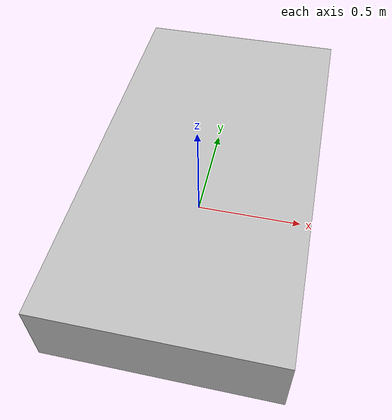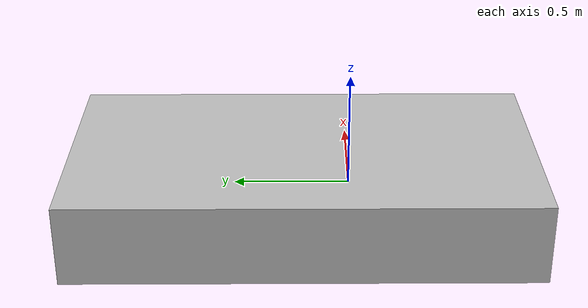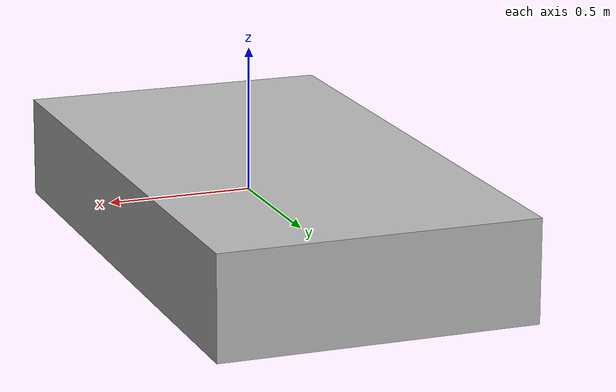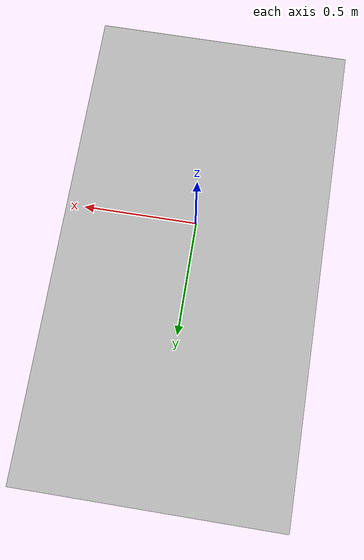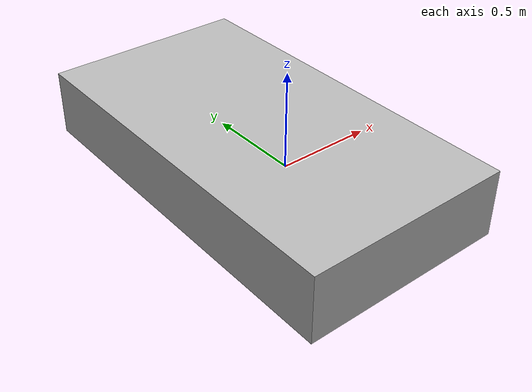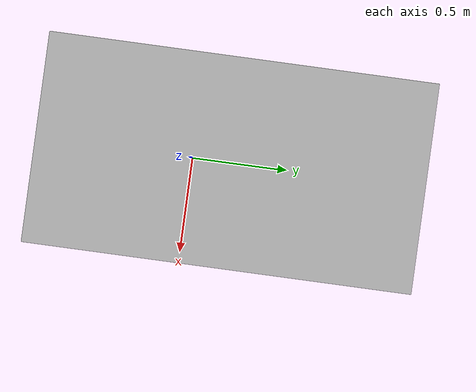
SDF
<?xml version="1.0" ?>
<sdf version="1.10">
  <world name="bcod_parity_constant-thrust">

    <spherical_coordinates>
      <surface_model>EARTH_WGS84</surface_model>
      <world_frame_orientation>ENU</world_frame_orientation>
      <latitude_deg>-33.7227687689</latitude_deg>
      <longitude_deg>150.6739911017</longitude_deg>
      <elevation>0</elevation>
      <heading_deg>0</heading_deg>
    </spherical_coordinates>
    <physics name="parity_physics" type="dart">
      <max_step_size>0.05</max_step_size>
      <real_time_factor>1</real_time_factor>
    </physics>
    <gravity>0 0 -9.81</gravity>
    <plugin filename="gz-sim-physics-system" name="gz::sim::systems::Physics"/>
    <plugin filename="gz-sim-user-commands-system" name="gz::sim::systems::UserCommands"/>

    <plugin filename="gz-sim-buoyancy-system" name="gz::sim::systems::Buoyancy">
      <graded_buoyancy>
        <default_density>1025</default_density>
        <density_change>
          <above_depth>0</above_depth>
          <density>0</density>
        </density_change>
      </graded_buoyancy>
    </plugin>
    <include>
      <uri>model://otter</uri>
      <pose>0 0 0 0 0 1.5707963268</pose>
    </include>
    <plugin filename="gz-sim-scene-broadcaster-system" name="gz::sim::systems::SceneBroadcaster"/>
    <plugin filename="gz-sim-sensors-system" name="gz::sim::systems::Sensors"/>
    <plugin filename="gz-sim-imu-system" name="gz::sim::systems::Imu"/>
    <plugin filename="gz-sim-navsat-system" name="gz::sim::systems::NavSat"/>
    <plugin filename="gz-sim-contact-system" name="gz::sim::systems::Contact"/>
    <plugin filename="gz-sim-apply-link-wrench-system" name="gz::sim::systems::ApplyLinkWrench"/>
    <!-- BCOD parity metadata: current ENU 0 0 0 -->
  </world>
</sdf>

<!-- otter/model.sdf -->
<sdf version="1.10">
  <model name="otter">
    <pose>0 0 0 0 0 0</pose>
    <link name="base_link">
      <inertial>
        <pose>0.2 0 -0.2 0 0 0</pose>
        <mass>55</mass>
        <inertia>
          <ixx>9.504</ixx><iyy>15.75</iyy><izz>15.95</izz>
          <ixy>0</ixy><ixz>0</ixz><iyz>0</iyz>
        </inertia>

      </inertial>

      <collision name="hull_collision_0">
        <pose>0.2 0 0 0 0 0</pose>
        <geometry><box><size>2 1.08 0.0496838302</size></box></geometry>
      </collision>
      <visual name="hull_visual_0">
        <pose>0.2 0 0 0 0 0</pose>
        <geometry><box><size>2 1.08 0.35</size></box></geometry>
      </visual>

    </link>

    <plugin filename="gz-sim-hydrodynamics-system" name="gz::sim::systems::Hydrodynamics">
      <link_name>base_link</link_name>
      <water_density>1025</water_density>
      <xU>-77.533437014</xU>
      <yV>-137.5</yV>
      <zW>0</zW>
      <kP>0</kP>
      <mQ>0</mQ>
      <nR>-39.325</nR>
      <xUabsU>0</xUabsU>
      <yVabsV>0</yVabsV>
      <zWabsW>0</zWabsW>
      <kPabsP>0</kPabsP>
      <mQabsQ>0</mQabsQ>
      <nRabsR>-393.25</nRabsR>

    </plugin>

    <plugin filename="gz-sim-pose-publisher-system" name="gz::sim::systems::PosePublisher">
      <publish_model_pose>true</publish_model_pose>
      <publish_link_pose>true</publish_link_pose>
      <use_pose_vector_msg>true</use_pose_vector_msg>
      <static_publisher>false</static_publisher>
    </plugin>

  </model>
</sdf>
